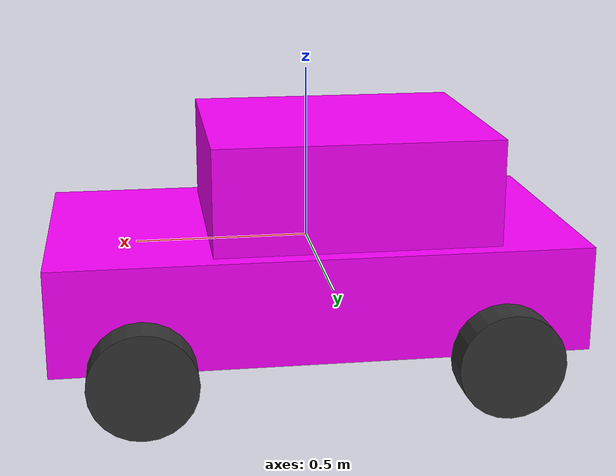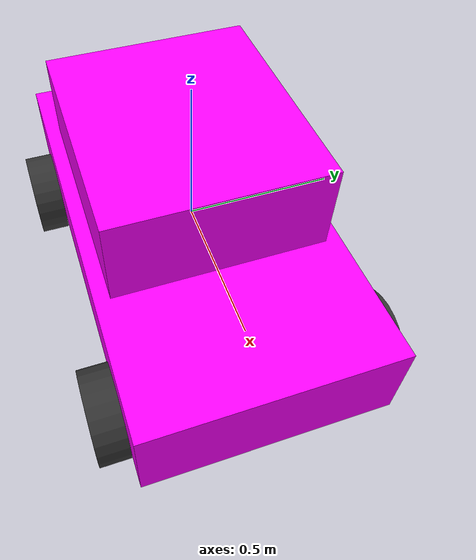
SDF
<?xml version="1.0"?>
<sdf version="1.6">
  <model name="car">
    <static>true</static>
    <link name="link">
      <!-- Main Chassis -->
      <collision name="chassis_collision">
        <pose>0 0 -0.1 0 0 0</pose>
        <geometry>
          <box><size>1.5 0.8 0.3</size></box>
        </geometry>
      </collision>
      <visual name="chassis_visual">
        <pose>0 0 -0.1 0 0 0</pose>
        <geometry>
          <box><size>1.5 0.8 0.3</size></box>
        </geometry>
        <material>
          <ambient>1.0 0.0 1.0 1</ambient>
          <diffuse>1.0 0.0 1.0 1</diffuse>
          <specular>0.5 0.0 0.5 1</specular>
        </material>
      </visual>

      <!-- Cabin / Roof -->
      <collision name="cabin_collision">
        <pose>-0.1 0 0.2 0 0 0</pose>
        <geometry>
          <box><size>0.8 0.7 0.3</size></box>
        </geometry>
      </collision>
      <visual name="cabin_visual">
        <pose>-0.1 0 0.2 0 0 0</pose>
        <geometry>
          <box><size>0.8 0.7 0.3</size></box>
        </geometry>
        <material>
          <ambient>1.0 0.0 1.0 1</ambient>
          <diffuse>1.0 0.0 1.0 1</diffuse>
          <specular>0.5 0.0 0.5 1</specular>
        </material>
      </visual>

      <!-- Front Left Wheel -->
      <collision name="wheel_fl_collision">
        <pose>0.5 0.45 -0.25 1.57079632679 0 0</pose>
        <geometry>
          <cylinder><radius>0.15</radius><length>0.1</length></cylinder>
        </geometry>
      </collision>
      <visual name="wheel_fl_visual">
        <pose>0.5 0.45 -0.25 1.57079632679 0 0</pose>
        <geometry>
          <cylinder><radius>0.15</radius><length>0.1</length></cylinder>
        </geometry>
        <material>
          <ambient>0.2 0.2 0.2 1</ambient>
          <diffuse>0.2 0.2 0.2 1</diffuse>
        </material>
      </visual>

      <!-- Front Right Wheel -->
      <collision name="wheel_fr_collision">
        <pose>0.5 -0.45 -0.25 1.57079632679 0 0</pose>
        <geometry>
          <cylinder><radius>0.15</radius><length>0.1</length></cylinder>
        </geometry>
      </collision>
      <visual name="wheel_fr_visual">
        <pose>0.5 -0.45 -0.25 1.57079632679 0 0</pose>
        <geometry>
          <cylinder><radius>0.15</radius><length>0.1</length></cylinder>
        </geometry>
        <material>
          <ambient>0.2 0.2 0.2 1</ambient>
          <diffuse>0.2 0.2 0.2 1</diffuse>
        </material>
      </visual>

      <!-- Rear Left Wheel -->
      <collision name="wheel_rl_collision">
        <pose>-0.5 0.45 -0.25 1.57079632679 0 0</pose>
        <geometry>
          <cylinder><radius>0.15</radius><length>0.1</length></cylinder>
        </geometry>
      </collision>
      <visual name="wheel_rl_visual">
        <pose>-0.5 0.45 -0.25 1.57079632679 0 0</pose>
        <geometry>
          <cylinder><radius>0.15</radius><length>0.1</length></cylinder>
        </geometry>
        <material>
          <ambient>0.2 0.2 0.2 1</ambient>
          <diffuse>0.2 0.2 0.2 1</diffuse>
        </material>
      </visual>

      <!-- Rear Right Wheel -->
      <collision name="wheel_rr_collision">
        <pose>-0.5 -0.45 -0.25 1.57079632679 0 0</pose>
        <geometry>
          <cylinder><radius>0.15</radius><length>0.1</length></cylinder>
        </geometry>
      </collision>
      <visual name="wheel_rr_visual">
        <pose>-0.5 -0.45 -0.25 1.57079632679 0 0</pose>
        <geometry>
          <cylinder><radius>0.15</radius><length>0.1</length></cylinder>
        </geometry>
        <material>
          <ambient>0.2 0.2 0.2 1</ambient>
          <diffuse>0.2 0.2 0.2 1</diffuse>
        </material>
      </visual>
    </link>
  </model>
</sdf>
